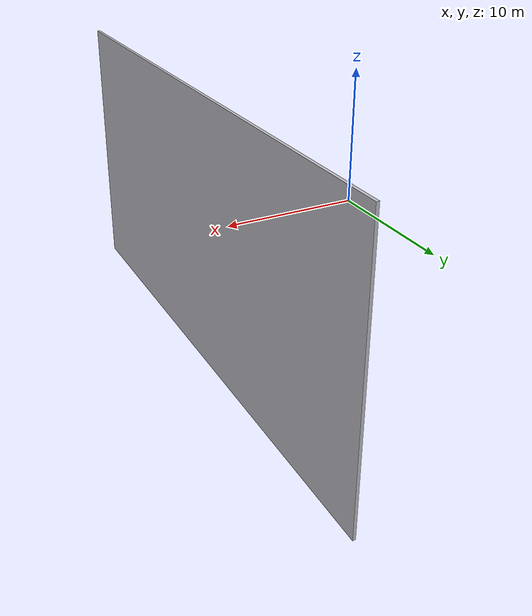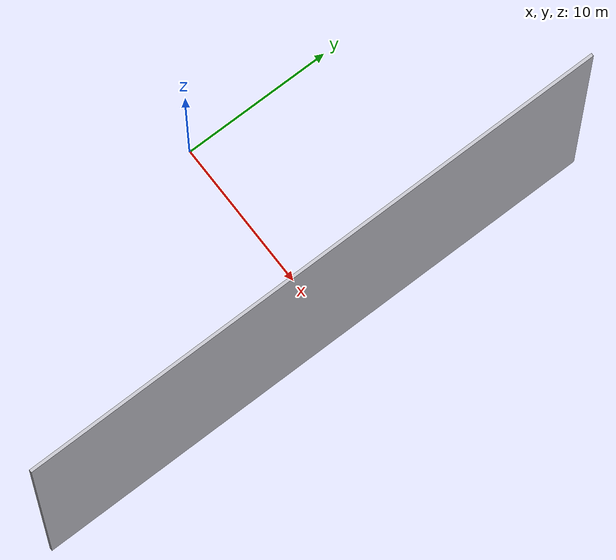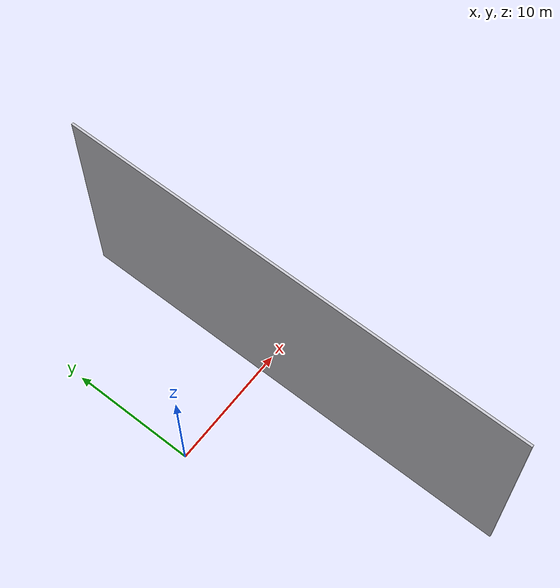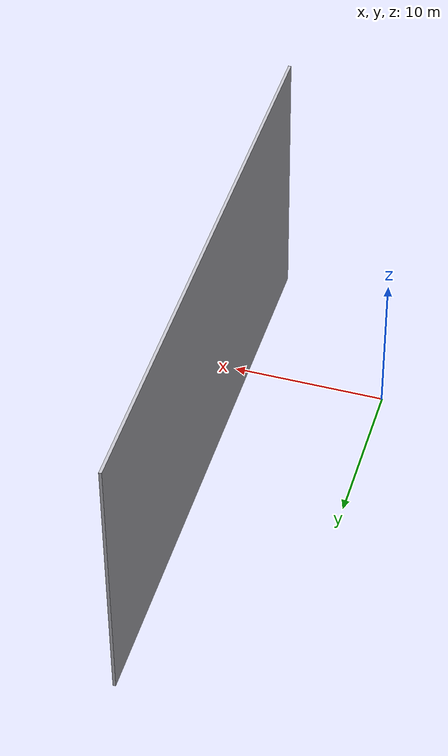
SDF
<?xml version="1.0"?>
<sdf version="1.6">
  <world name="b_t4_per_ray_static_wall">
    <gravity>0 0 0</gravity>
    <physics name="b_t4_ode" type="ode">
      <max_step_size>0.001</max_step_size>
      <real_time_factor>1.0</real_time_factor>
      <real_time_update_rate>1000</real_time_update_rate>
    </physics>
    <scene>
      <ambient>0.2 0.2 0.2 1</ambient>
      <background>0.04 0.04 0.04 1</background>
      <shadows>false</shadows>
    </scene>

    <model name="b_t4_static_wall">
      <static>true</static>
      <pose>12.1 0 0 0 0 0</pose>
      <link name="wall_link">
        <collision name="wall_collision">
          <geometry>
            <box><size>0.2 40 20</size></box>
          </geometry>
          <surface>
            <contact><collide_without_contact>true</collide_without_contact></contact>
          </surface>
        </collision>
        <visual name="wall_visual">
          <geometry>
            <box><size>0.2 40 20</size></box>
          </geometry>
          <material>
            <ambient>0.65 0.65 0.68 1</ambient>
            <diffuse>0.75 0.75 0.78 1</diffuse>
          </material>
        </visual>
      </link>
    </model>
  </world>
</sdf>
